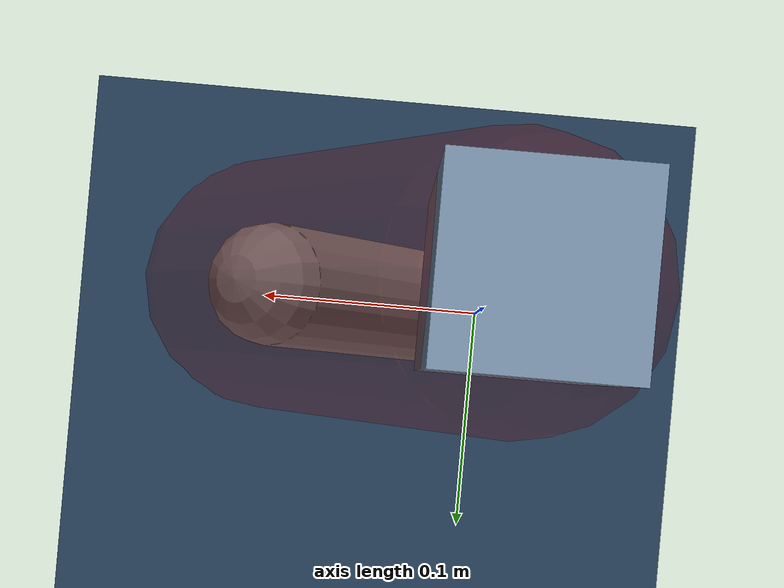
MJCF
<mujoco model="Hopper2D">
	<compiler inertiafromgeom="true" angle="radian" />
	<option timestep="0.001" integrator="implicit" cone="elliptic" solver="Newton" tolerance="1e-10" />

	<default>
		<geom contype="1" conaffinity="1" condim="3" friction="2 0.005 0.0001" solref="0.005 1" />
		<joint limited="true" damping="0.1" />
	</default>

	<asset>
		<texture name="skybox" type="skybox" builtin="gradient" rgb1=".4 .6 .8" rgb2="0 0 0" width="800" height="800" />
		<texture name="grid" type="2d" builtin="checker" rgb1=".1 .2 .3" rgb2=".2 .3 .4" width="300" height="300" mark="edge" markrgb=".2 .3 .4" />
		<material name="ground" texture="grid" texrepeat="1 1" texuniform="true" reflectance="0.1" />
		<material name="leg" rgba="0.5 0.6 0.7 1" />
	</asset>

	<worldbody>

		<geom name="floor" type="plane" size="5 5 0.25" material="ground" />

		<light directional="false" diffuse="0.8 0.8 0.8" specular="0.3 0.3 0.3" pos="0 0 2" dir="0 0 -1" />
		<light mode="targetbodycom" target="base" directional="false" diffuse="0.8 0.8 0.8" specular="0.3 0.3 0.3" pos="0 0 2" dir="0 0 -1" />

		<camera name="fixed" pos="0 -2 1" xyaxes="1 0 0 0 0 1" />
		<camera name="tracking" mode="trackcom" pos="0 -3 1" />

		<body name="root" pos="0 0 0.3380232704935405">
			<joint name="slide_x" type="slide" axis="1 0 0" range="-100 100" />
			<joint name="slide_z" type="slide" axis="0 0 1" range="0 10" />

			<body name="base" pos="0 0 0">
				<geom name="torso" type="box" size="0.03 0.03 0.1" mass="2.48" material="leg" />

				<body name="link1" pos="0 0 0" euler="0 1.1310104384982504 0">
					<joint type="hinge" axis="0 -1 0" pos="0 0 0" name="hinge1" limited="true" range="-3.14 3.14" stiffness="0" damping="0.1" />
					<geom name="thigh" type="capsule" fromto="0 0 0 0.21092719721630776 0 0" size="0.05" rgba="0.5 0 0 0.3" mass="0.7568179930407695" />

					<body name="link2" pos="0.21092719721630776 0 0" euler="0 0.9876709822519827 0">
						<joint type="hinge" axis="0 -1 0" pos="0 0 0" name="hinge2" limited="true" range="-3.14 3.14" stiffness="0" damping="0.1" />
						<geom name="shank" type="capsule" fromto="0 0 0 0.1724021443147668 0 0" size="0.025" mass="0.37736192988329015" />

					</body>
				</body>
			</body>
		</body>
	</worldbody>

	<actuator>
		<motor name="torque1" joint="hinge1" ctrlrange="-90.83961874323916 90.83961874323916" ctrllimited="true" gear="1" />
		<motor name="torque2" joint="hinge2" ctrlrange="-93.05426449295196 93.05426449295196" ctrllimited="true" gear="1" />
	</actuator>
</mujoco>
